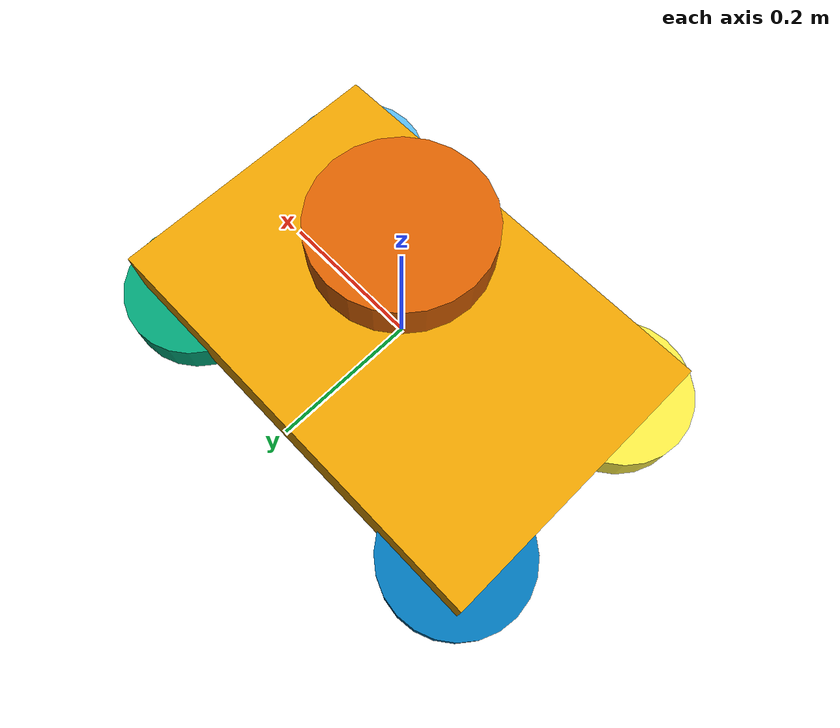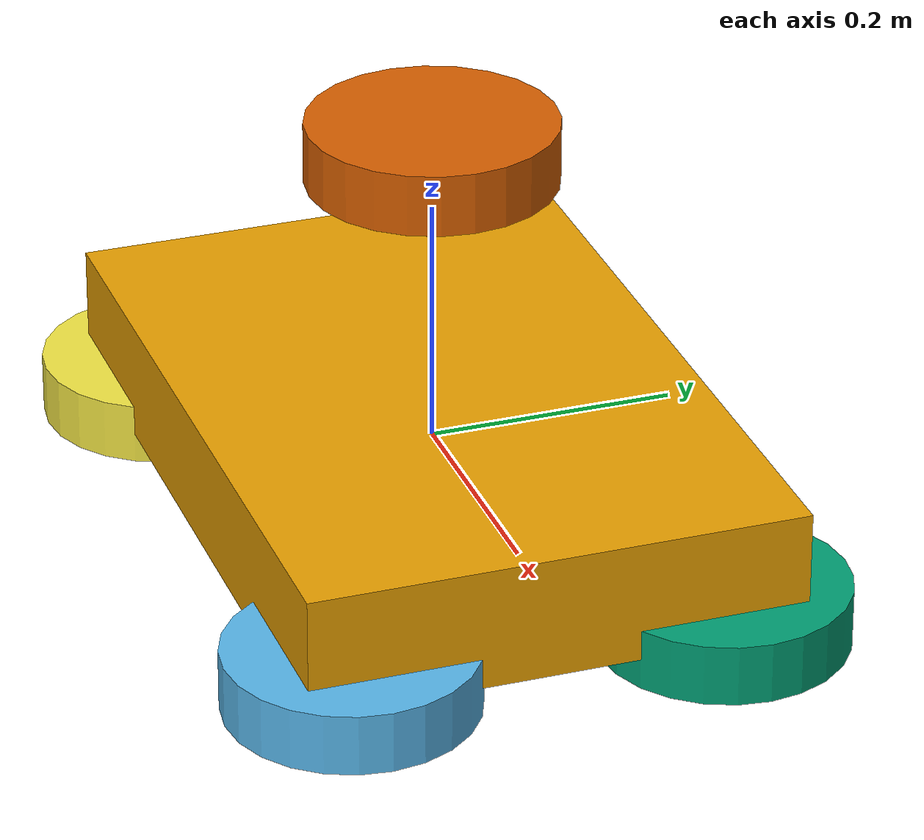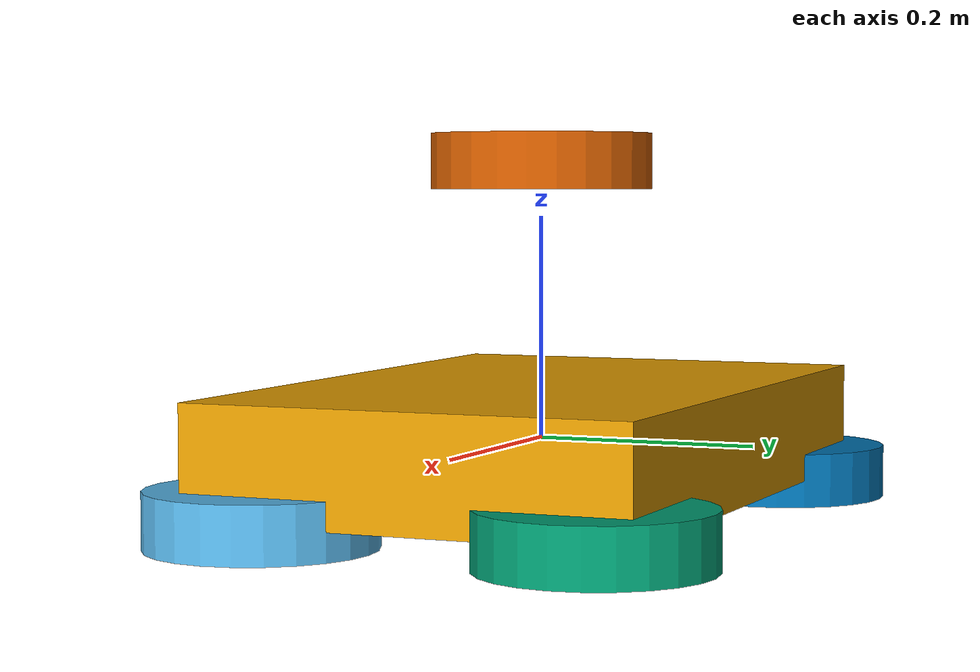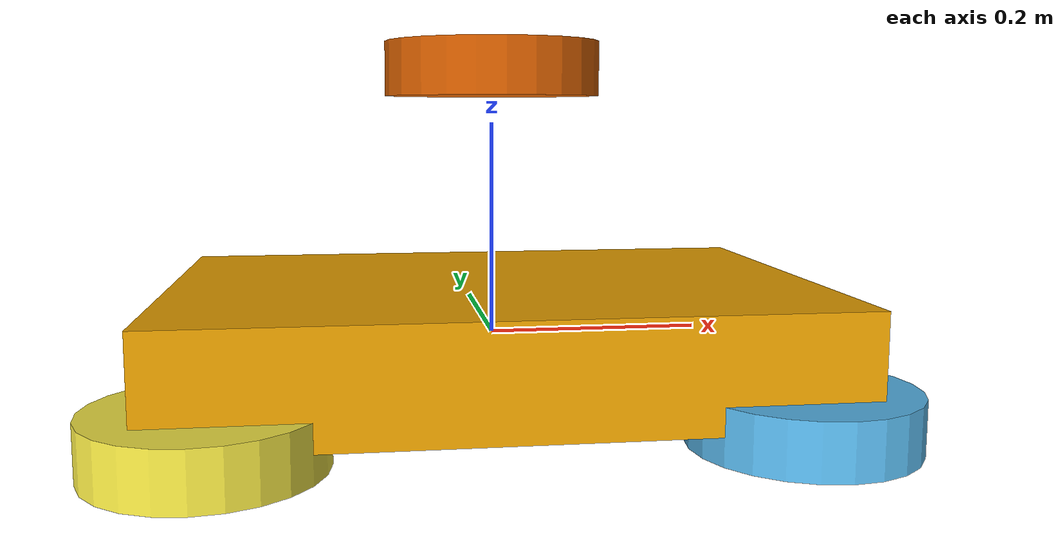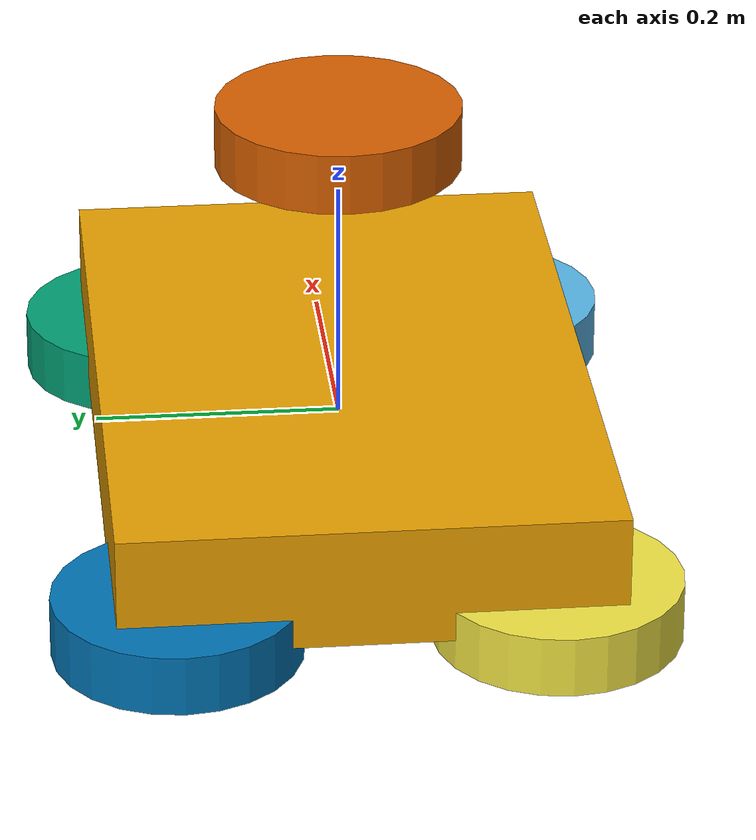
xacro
<?xml version="1.0"?>
<robot name="ackermann_robot">

    <!-- Base Link -->
    <link name="base_link">
        <visual>
            <geometry>
                <box size="0.6 0.4 0.1" /> <!-- Adjusted size for a longer base -->
            </geometry>
        </visual>
    </link>

    <!-- Wheel Links -->
    <link name="front_left_wheel">
        <visual>
            <geometry>
                <cylinder radius="0.1" length="0.05"/>
            </geometry>
        </visual>
    </link>

    <link name="front_right_wheel">
        <visual>
            <geometry>
                <cylinder radius="0.1" length="0.05"/>
            </geometry>
        </visual>
    </link>

    <link name="rear_left_wheel">
        <visual>
            <geometry>
                <cylinder radius="0.1" length="0.05"/>
            </geometry>
        </visual>
    </link>

    <link name="rear_right_wheel">
        <visual>
            <geometry>
                <cylinder radius="0.1" length="0.05"/>
            </geometry>
        </visual>
    </link>

    <!-- Joint for Rear Wheels -->
    <joint name="base_to_rear_left_wheel" type="fixed">
        <parent link="base_link"/>
        <child link="rear_left_wheel"/>
        <origin xyz="-0.25 -0.15 -0.05" rpy="0 0 0"/> <!-- Position of rear left wheel -->
    </joint>

    <joint name="base_to_rear_right_wheel" type="fixed">
        <parent link="base_link"/>
        <child link="rear_right_wheel"/>
        <origin xyz="-0.25 0.15 -0.05" rpy="0 0 0"/> <!-- Position of rear right wheel -->
    </joint>

    <!-- Joint for Front Wheels (Steering) -->
    <joint name="base_to_front_left_wheel" type="revolute">
        <parent link="base_link"/>
        <child link="front_left_wheel"/>
        <origin xyz="0.25 -0.15 -0.05" rpy="0 0 0"/> <!-- Position of front left wheel -->
        <axis xyz="0 0 1"/> <!-- Rotation axis -->
    </joint>

    <joint name="base_to_front_right_wheel" type="revolute">
        <parent link="base_link"/>
        <child link="front_right_wheel"/>
        <origin xyz="0.25 0.15 -0.05" rpy="0 0 0"/> <!-- Position of front right wheel -->
        <axis xyz="0 0 1"/> <!-- Rotation axis -->
    </joint>

    <!-- LIDAR Link -->
    <link name="lidar">
        <visual>
            <geometry>
                <cylinder radius="0.1" length="0.05"/>
            </geometry>
        </visual>
    </link>

    <!-- Joint between Base and LIDAR -->
    <joint name="base_to_lidar" type="fixed">
        <parent link="base_link"/>
        <child link="lidar"/>
        <origin xyz="0 0 0.25" rpy="0 0 0"/> <!-- Adjust position as needed -->
    </joint>

</robot>
